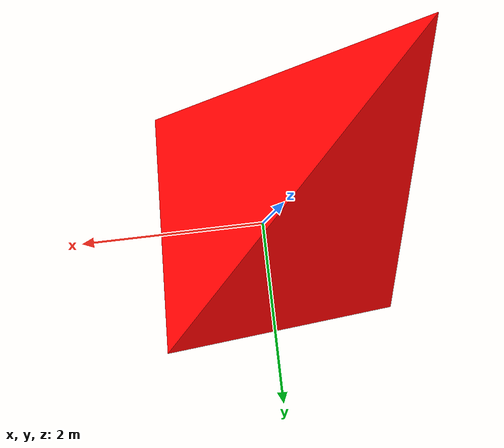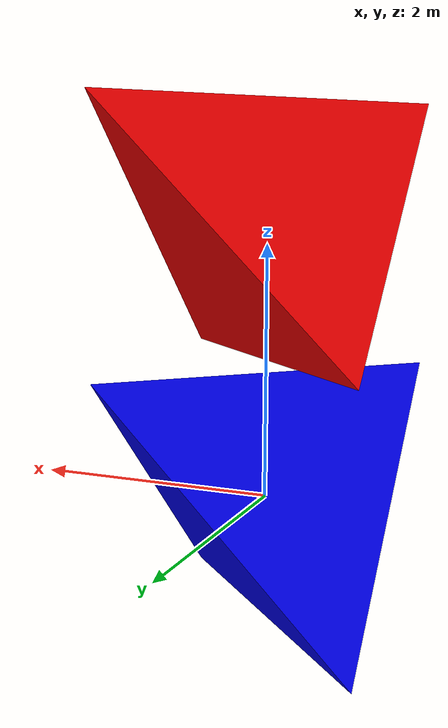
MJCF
<mujoco model="two_tet">
  <compiler angle="degree"/>
  <option gravity="0 0 -9.8100000000000005"/>
  <default>
    <default class="/">
      <joint damping="0.001"/>
      <geom friction="1 0.0050000000000000001 0.0001" density="500"/>
    </default>
  </default>

  <asset>
    <texture builtin="gradient" height="100" rgb1="1 1 1" rgb2="0 0 0" type="skybox" width="100"/>
    <texture builtin="flat" height="1278" mark="cross" markrgb="1 1 1" name="texgeom" random="0.01" rgb1="0.8 0.6 0.4" rgb2="0.8 0.6 0.4" type="cube" width="127"/>
    <texture builtin="checker" height="100" name="texplane" rgb1="0 0 0" rgb2="0.8 0.8 0.8" type="2d" width="100"/>
    <material name="MatPlane" reflectance="0.5" shininess="1" specular="1" texrepeat="60 60" texture="texplane"/>
    <mesh name="tet" file="tet.obj"/>
  </asset>

  <worldbody>
    <geom name="tet1" contype="1" conaffinity="1" pos="0 0 0" type="mesh" rgba="0 0 1 1" mesh="tet"/>

    <body name="tet2" pos="0 0 2.1">
      <joint name="root" class="/" type="free"/>
      <geom name="tet2" contype="1" conaffinity="1" pos="0 0 0" type="mesh" rgba="1 0 0 1" mesh="tet"/>
    </body>
  </worldbody>
</mujoco>
